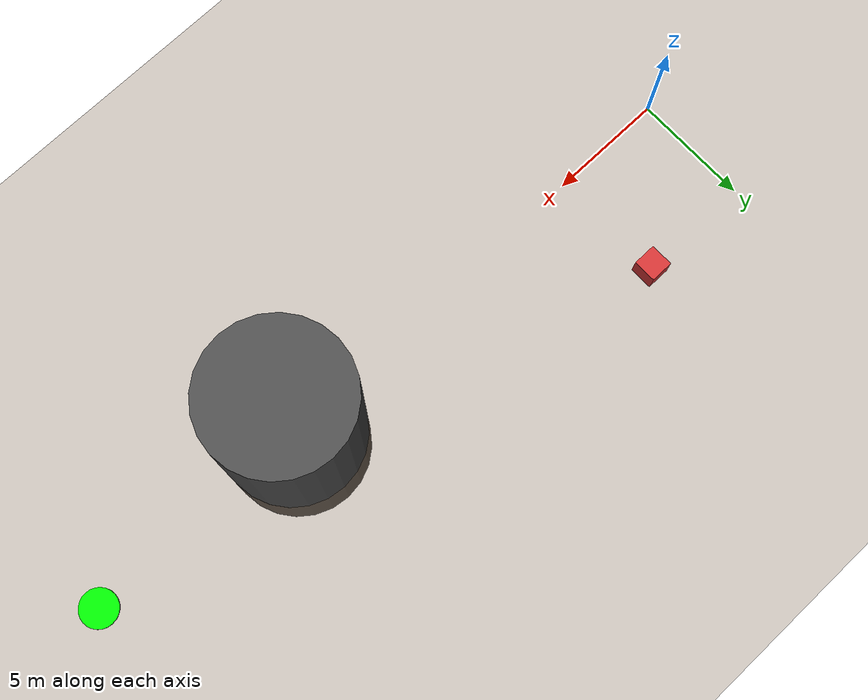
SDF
<?xml version="1.0" ?>
<sdf version="1.6">
  <world name="ugv_world">
    <physics name="1ms" type="ignored">
      <max_step_size>0.001</max_step_size>
      <real_time_factor>1.0</real_time_factor>
    </physics>
    <plugin
      filename="ignition-gazebo-physics-system"
      name="ignition::gazebo::systems::Physics">
    </plugin>
    <plugin
      filename="ignition-gazebo-scene-broadcaster-system"
      name="ignition::gazebo::systems::SceneBroadcaster">
    </plugin>
    <plugin
      filename="ignition-gazebo-user-commands-system"
      name="ignition::gazebo::systems::UserCommands">
    </plugin>

    <scene>
      <ambient>0.4 0.4 0.4 1</ambient>
      <background>0.7 0.7 0.7 1</background>
    </scene>

    <light type="directional" name="sun">
      <cast_shadows>true</cast_shadows>
      <pose>0 0 10 0 0 0</pose>
      <diffuse>0.8 0.8 0.8 1</diffuse>
    </light>

    <model name="ground">
      <static>true</static>
      <link name="link">
        <collision name="collision">
          <geometry>
            <plane>
              <normal>0 0 1</normal>
              <size>200 200</size>
            </plane>
          </geometry>
          <surface>
            <friction>
              <ode>
                <mu>0.8</mu>
                <mu2>0.8</mu2>
              </ode>
            </friction>
          </surface>
        </collision>
        <visual name="visual">
          <geometry>
            <plane>
              <normal>0 0 1</normal>
              <size>200 200</size>
            </plane>
          </geometry>
          <material>
            <ambient>0.4 0.3 0.2 1</ambient>
            <diffuse>0.4 0.3 0.2 1</diffuse>
          </material>
        </visual>
      </link>
    </model>

    <model name="obstacle_1">
      <static>true</static>
      <pose>5 5 0.5 0 0 0</pose>
      <link name="link">
        <collision name="collision">
          <geometry>
            <box>
              <size>1 1 1</size>
            </box>
          </geometry>
        </collision>
        <visual name="visual">
          <geometry>
            <box>
              <size>1 1 1</size>
            </box>
          </geometry>
          <material>
            <ambient>0.8 0.2 0.2 1</ambient>
          </material>
        </visual>
      </link>
    </model>

    <model name="tunnel">
      <static>true</static>
      <pose>20 0 2 0 0 1.57</pose>
      <link name="link">
        <collision name="collision">
          <geometry>
            <cylinder>
              <radius>3</radius>
              <length>10</length>
            </cylinder>
          </geometry>
        </collision>
        <visual name="visual">
          <geometry>
            <cylinder>
              <radius>3</radius>
              <length>10</length>
            </cylinder>
          </geometry>
          <material>
            <ambient>0.3 0.3 0.3 1</ambient>
          </material>
        </visual>
      </link>
    </model>

    <model name="goal_marker">
      <static>true</static>
      <pose>30 0 0.1 0 0 0</pose>
      <link name="link">
        <visual name="visual">
          <geometry>
            <cylinder>
              <radius>0.8</radius>
              <length>0.1</length>
            </cylinder>
          </geometry>
          <material>
            <ambient>0 1 0 1</ambient>
            <diffuse>0 1 0 1</diffuse>
          </material>
        </visual>
      </link>
    </model>
  </world>
</sdf>
